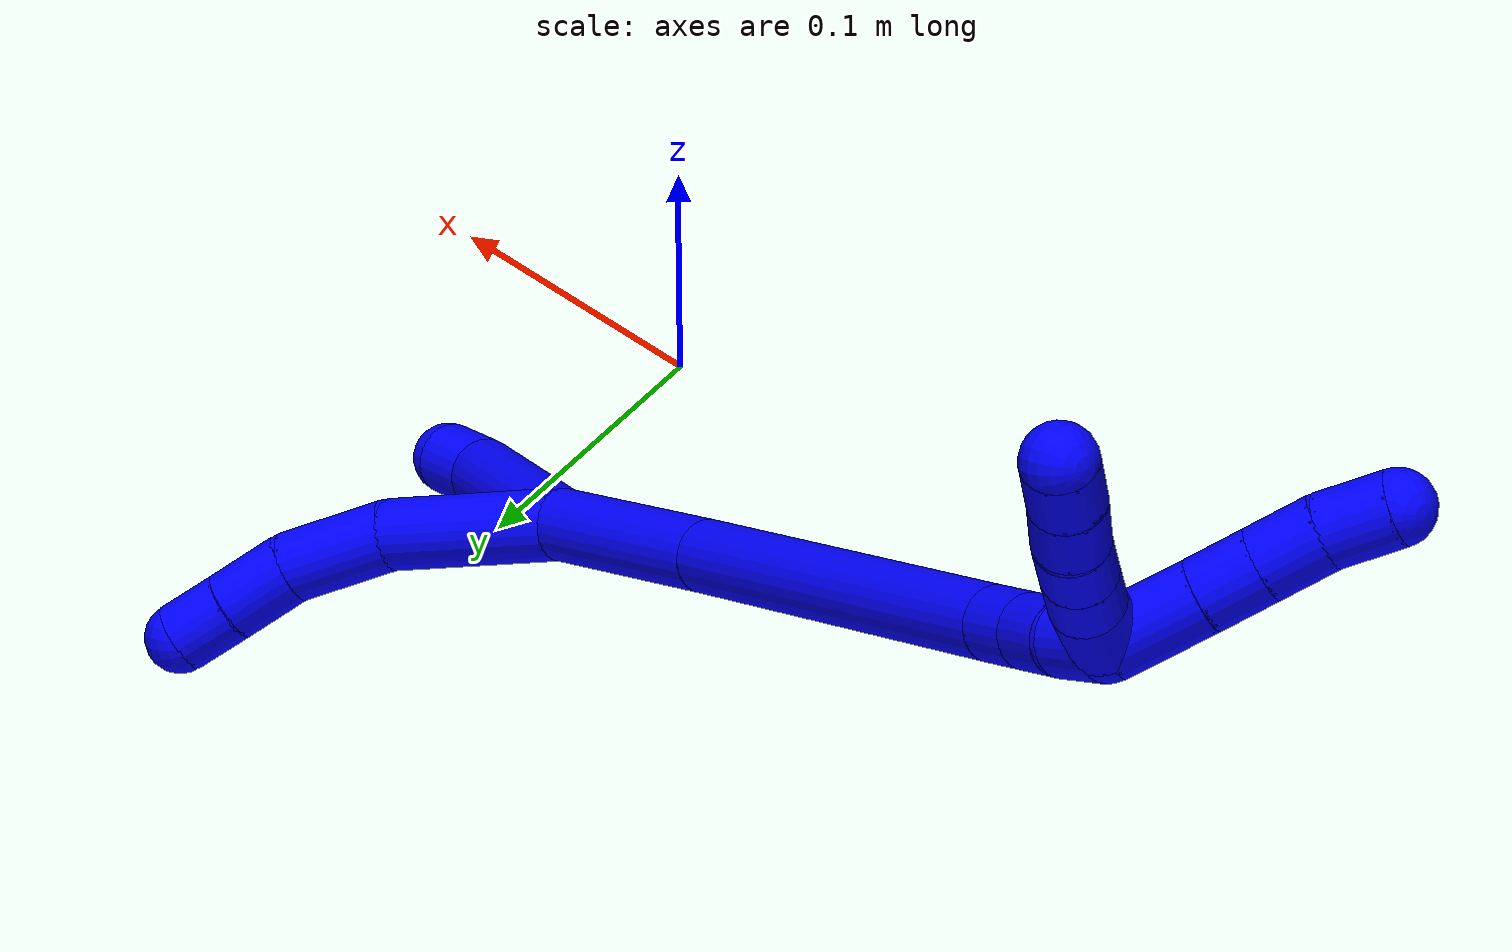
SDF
<sdf version="1.7">
 <world name="default">
  <model name="1">
   <static>0</static>
   <link name="1">
    <collision name="collision-cylinder-e_1_2_8">
     <pose>0.011967 -0.011154 -0.028101 2.76375 0.3769 1.56823</pose>
     <geometry><cylinder><radius>0.0125</radius><length>0.065031</length></cylinder></geometry>
     <surface>
      <friction><ode><mu>1.16</mu><mu2>1.16</mu2><slip1>0</slip1><slip2>0</slip2></ode></friction>
      <contact><ode><kp>1e+06</kp><kd>1</kd><max_vel>0</max_vel><min_depth>0.001</min_depth></ode></contact>
     </surface>
    </collision>
    <visual name="visual-cylinder-e_1_2_8">
     <pose>0.011967 -0.011154 -0.028101 2.76375 0.3769 1.56823</pose>
     <geometry><cylinder><radius>0.0125</radius><length>0.065031</length></cylinder></geometry>
     <material><ambient>0 0 1 1</ambient></material>
    </visual>
    <collision name="collision-cylinder-e_2_8_9">
     <pose>0.035371 -0.02896 -0.070115 2.69561 0.638098 1.93843</pose>
     <geometry><cylinder><radius>0.0125</radius><length>0.038401</length></cylinder></geometry>
     <surface>
      <friction><ode><mu>1.16</mu><mu2>1.16</mu2><slip1>0</slip1><slip2>0</slip2></ode></friction>
      <contact><ode><kp>1e+06</kp><kd>1</kd><max_vel>0</max_vel><min_depth>0.001</min_depth></ode></contact>
     </surface>
    </collision>
    <visual name="visual-cylinder-e_2_8_9">
     <pose>0.035371 -0.02896 -0.070115 2.69561 0.638098 1.93843</pose>
     <geometry><cylinder><radius>0.0125</radius><length>0.038401</length></cylinder></geometry>
     <material><ambient>0 0 1 1</ambient></material>
    </visual>
    <collision name="collision-cylinder-e_3_9_10">
     <pose>0.056917 -0.039436 -0.090852 2.63074 0.91227 2.16342</pose>
     <geometry><cylinder><radius>0.0125</radius><length>0.025563</length></cylinder></geometry>
     <surface>
      <friction><ode><mu>1.16</mu><mu2>1.16</mu2><slip1>0</slip1><slip2>0</slip2></ode></friction>
      <contact><ode><kp>1e+06</kp><kd>1</kd><max_vel>0</max_vel><min_depth>0.001</min_depth></ode></contact>
     </surface>
    </collision>
    <visual name="visual-cylinder-e_3_9_10">
     <pose>0.056917 -0.039436 -0.090852 2.63074 0.91227 2.16342</pose>
     <geometry><cylinder><radius>0.0125</radius><length>0.025563</length></cylinder></geometry>
     <material><ambient>0 0 1 1</ambient></material>
    </visual>
    <collision name="collision-cylinder-e_4_10_6">
     <pose>0.075191 -0.046229 -0.103576 2.67551 0.890599 2.21859</pose>
     <geometry><cylinder><radius>0.0125</radius><length>0.021006</length></cylinder></geometry>
     <surface>
      <friction><ode><mu>1.16</mu><mu2>1.16</mu2><slip1>0</slip1><slip2>0</slip2></ode></friction>
      <contact><ode><kp>1e+06</kp><kd>1</kd><max_vel>0</max_vel><min_depth>0.001</min_depth></ode></contact>
     </surface>
    </collision>
    <visual name="visual-cylinder-e_4_10_6">
     <pose>0.075191 -0.046229 -0.103576 2.67551 0.890599 2.21859</pose>
     <geometry><cylinder><radius>0.0125</radius><length>0.021006</length></cylinder></geometry>
     <material><ambient>0 0 1 1</ambient></material>
    </visual>
    <collision name="collision-cylinder-e_1_2_11">
     <pose>-0.004674 0.010589 -0.037719 -2.86789 -0.118735 0.814916</pose>
     <geometry><cylinder><radius>0.0125</radius><length>0.078911</length></cylinder></geometry>
     <surface>
      <friction><ode><mu>1.16</mu><mu2>1.16</mu2><slip1>0</slip1><slip2>0</slip2></ode></friction>
      <contact><ode><kp>1e+06</kp><kd>1</kd><max_vel>0</max_vel><min_depth>0.001</min_depth></ode></contact>
     </surface>
    </collision>
    <visual name="visual-cylinder-e_1_2_11">
     <pose>-0.004674 0.010589 -0.037719 -2.86789 -0.118735 0.814916</pose>
     <geometry><cylinder><radius>0.0125</radius><length>0.078911</length></cylinder></geometry>
     <material><ambient>0 0 1 1</ambient></material>
    </visual>
    <collision name="collision-cylinder-e_2_11_5">
     <pose>-0.009932 0.021087 -0.085967 3.13286 -0.055475 -2.82924</pose>
     <geometry><cylinder><radius>0.0125</radius><length>0.021089</length></cylinder></geometry>
     <surface>
      <friction><ode><mu>1.16</mu><mu2>1.16</mu2><slip1>0</slip1><slip2>0</slip2></ode></friction>
      <contact><ode><kp>1e+06</kp><kd>1</kd><max_vel>0</max_vel><min_depth>0.001</min_depth></ode></contact>
     </surface>
    </collision>
    <visual name="visual-cylinder-e_2_11_5">
     <pose>-0.009932 0.021087 -0.085967 3.13286 -0.055475 -2.82924</pose>
     <geometry><cylinder><radius>0.0125</radius><length>0.021089</length></cylinder></geometry>
     <material><ambient>0 0 1 1</ambient></material>
    </visual>
    <collision name="collision-cylinder-e_1_2_12">
     <pose>-0.002857 -0.000427 0.039025 0.010941 -0.073074 -0.0004</pose>
     <geometry><cylinder><radius>0.0125</radius><length>0.078264</length></cylinder></geometry>
     <surface>
      <friction><ode><mu>1.16</mu><mu2>1.16</mu2><slip1>0</slip1><slip2>0</slip2></ode></friction>
      <contact><ode><kp>1e+06</kp><kd>1</kd><max_vel>0</max_vel><min_depth>0.001</min_depth></ode></contact>
     </surface>
    </collision>
    <visual name="visual-cylinder-e_1_2_12">
     <pose>-0.002857 -0.000427 0.039025 0.010941 -0.073074 -0.0004</pose>
     <geometry><cylinder><radius>0.0125</radius><length>0.078264</length></cylinder></geometry>
     <material><ambient>0 0 1 1</ambient></material>
    </visual>
    <collision name="collision-cylinder-e_2_12_13">
     <pose>-0.00979 -0.008701 0.157763 0.098122 -0.05085 -0.002497</pose>
     <geometry><cylinder><radius>0.0125</radius><length>0.160403</length></cylinder></geometry>
     <surface>
      <friction><ode><mu>1.16</mu><mu2>1.16</mu2><slip1>0</slip1><slip2>0</slip2></ode></friction>
      <contact><ode><kp>1e+06</kp><kd>1</kd><max_vel>0</max_vel><min_depth>0.001</min_depth></ode></contact>
     </surface>
    </collision>
    <visual name="visual-cylinder-e_2_12_13">
     <pose>-0.00979 -0.008701 0.157763 0.098122 -0.05085 -0.002497</pose>
     <geometry><cylinder><radius>0.0125</radius><length>0.160403</length></cylinder></geometry>
     <material><ambient>0 0 1 1</ambient></material>
    </visual>
    <collision name="collision-cylinder-e_3_13_14">
     <pose>-0.014378 -0.018026 0.247354 0.14858 -0.051104 -0.003804</pose>
     <geometry><cylinder><radius>0.0125</radius><length>0.020004</length></cylinder></geometry>
     <surface>
      <friction><ode><mu>1.16</mu><mu2>1.16</mu2><slip1>0</slip1><slip2>0</slip2></ode></friction>
      <contact><ode><kp>1e+06</kp><kd>1</kd><max_vel>0</max_vel><min_depth>0.001</min_depth></ode></contact>
     </surface>
    </collision>
    <visual name="visual-cylinder-e_3_13_14">
     <pose>-0.014378 -0.018026 0.247354 0.14858 -0.051104 -0.003804</pose>
     <geometry><cylinder><radius>0.0125</radius><length>0.020004</length></cylinder></geometry>
     <material><ambient>0 0 1 1</ambient></material>
    </visual>
    <collision name="collision-cylinder-e_4_14_15">
     <pose>-0.015301 -0.021963 0.26745 0.236134 -0.039241 -0.004655</pose>
     <geometry><cylinder><radius>0.0125</radius><length>0.021035</length></cylinder></geometry>
     <surface>
      <friction><ode><mu>1.16</mu><mu2>1.16</mu2><slip1>0</slip1><slip2>0</slip2></ode></friction>
      <contact><ode><kp>1e+06</kp><kd>1</kd><max_vel>0</max_vel><min_depth>0.001</min_depth></ode></contact>
     </surface>
    </collision>
    <visual name="visual-cylinder-e_4_14_15">
     <pose>-0.015301 -0.021963 0.26745 0.236134 -0.039241 -0.004655</pose>
     <geometry><cylinder><radius>0.0125</radius><length>0.021035</length></cylinder></geometry>
     <material><ambient>0 0 1 1</ambient></material>
    </visual>
    <collision name="collision-cylinder-e_5_15_1">
     <pose>-0.017089 -0.024955 0.287708 0.053045 -0.135957 -0.003612</pose>
     <geometry><cylinder><radius>0.0125</radius><length>0.020295</length></cylinder></geometry>
     <surface>
      <friction><ode><mu>1.16</mu><mu2>1.16</mu2><slip1>0</slip1><slip2>0</slip2></ode></friction>
      <contact><ode><kp>1e+06</kp><kd>1</kd><max_vel>0</max_vel><min_depth>0.001</min_depth></ode></contact>
     </surface>
    </collision>
    <visual name="visual-cylinder-e_5_15_1">
     <pose>-0.017089 -0.024955 0.287708 0.053045 -0.135957 -0.003612</pose>
     <geometry><cylinder><radius>0.0125</radius><length>0.020295</length></cylinder></geometry>
     <material><ambient>0 0 1 1</ambient></material>
    </visual>
    <collision name="collision-cylinder-e_1_1_16">
     <pose>-0.0304 -0.020469 0.308024 -0.45436 -0.806691 0.196664</pose>
     <geometry><cylinder><radius>0.0125</radius><length>0.03306</length></cylinder></geometry>
     <surface>
      <friction><ode><mu>1.16</mu><mu2>1.16</mu2><slip1>0</slip1><slip2>0</slip2></ode></friction>
      <contact><ode><kp>1e+06</kp><kd>1</kd><max_vel>0</max_vel><min_depth>0.001</min_depth></ode></contact>
     </surface>
    </collision>
    <visual name="visual-cylinder-e_1_1_16">
     <pose>-0.0304 -0.020469 0.308024 -0.45436 -0.806691 0.196664</pose>
     <geometry><cylinder><radius>0.0125</radius><length>0.03306</length></cylinder></geometry>
     <material><ambient>0 0 1 1</ambient></material>
    </visual>
    <collision name="collision-cylinder-e_2_16_17">
     <pose>-0.049939 -0.012236 0.324605 -0.471346 -0.82138 0.208377</pose>
     <geometry><cylinder><radius>0.0125</radius><length>0.020775</length></cylinder></geometry>
     <surface>
      <friction><ode><mu>1.16</mu><mu2>1.16</mu2><slip1>0</slip1><slip2>0</slip2></ode></friction>
      <contact><ode><kp>1e+06</kp><kd>1</kd><max_vel>0</max_vel><min_depth>0.001</min_depth></ode></contact>
     </surface>
    </collision>
    <visual name="visual-cylinder-e_2_16_17">
     <pose>-0.049939 -0.012236 0.324605 -0.471346 -0.82138 0.208377</pose>
     <geometry><cylinder><radius>0.0125</radius><length>0.020775</length></cylinder></geometry>
     <material><ambient>0 0 1 1</ambient></material>
    </visual>
    <collision name="collision-cylinder-e_3_17_18">
     <pose>-0.06566 -0.005712 0.337768 -0.449749 -0.817241 0.197444</pose>
     <geometry><cylinder><radius>0.0125</radius><length>0.022258</length></cylinder></geometry>
     <surface>
      <friction><ode><mu>1.16</mu><mu2>1.16</mu2><slip1>0</slip1><slip2>0</slip2></ode></friction>
      <contact><ode><kp>1e+06</kp><kd>1</kd><max_vel>0</max_vel><min_depth>0.001</min_depth></ode></contact>
     </surface>
    </collision>
    <visual name="visual-cylinder-e_3_17_18">
     <pose>-0.06566 -0.005712 0.337768 -0.449749 -0.817241 0.197444</pose>
     <geometry><cylinder><radius>0.0125</radius><length>0.022258</length></cylinder></geometry>
     <material><ambient>0 0 1 1</ambient></material>
    </visual>
    <collision name="collision-cylinder-e_4_18_4">
     <pose>-0.080913 0.001386 0.353434 -0.406018 -0.639851 0.136185</pose>
     <geometry><cylinder><radius>0.0125</radius><length>0.023906</length></cylinder></geometry>
     <surface>
      <friction><ode><mu>1.16</mu><mu2>1.16</mu2><slip1>0</slip1><slip2>0</slip2></ode></friction>
      <contact><ode><kp>1e+06</kp><kd>1</kd><max_vel>0</max_vel><min_depth>0.001</min_depth></ode></contact>
     </surface>
    </collision>
    <visual name="visual-cylinder-e_4_18_4">
     <pose>-0.080913 0.001386 0.353434 -0.406018 -0.639851 0.136185</pose>
     <geometry><cylinder><radius>0.0125</radius><length>0.023906</length></cylinder></geometry>
     <material><ambient>0 0 1 1</ambient></material>
    </visual>
    <collision name="collision-cylinder-e_1_1_19">
     <pose>-0.022521 -0.03439 0.299822 1.34187 -0.417623 -0.333284</pose>
     <geometry><cylinder><radius>0.0125</radius><length>0.02</length></cylinder></geometry>
     <surface>
      <friction><ode><mu>1.16</mu><mu2>1.16</mu2><slip1>0</slip1><slip2>0</slip2></ode></friction>
      <contact><ode><kp>1e+06</kp><kd>1</kd><max_vel>0</max_vel><min_depth>0.001</min_depth></ode></contact>
     </surface>
    </collision>
    <visual name="visual-cylinder-e_1_1_19">
     <pose>-0.022521 -0.03439 0.299822 1.34187 -0.417623 -0.333284</pose>
     <geometry><cylinder><radius>0.0125</radius><length>0.02</length></cylinder></geometry>
     <material><ambient>0 0 1 1</ambient></material>
    </visual>
    <collision name="collision-cylinder-e_2_19_20">
     <pose>-0.030026 -0.051584 0.306295 1.08299 -0.352191 -0.213235</pose>
     <geometry><cylinder><radius>0.0125</radius><length>0.02</length></cylinder></geometry>
     <surface>
      <friction><ode><mu>1.16</mu><mu2>1.16</mu2><slip1>0</slip1><slip2>0</slip2></ode></friction>
      <contact><ode><kp>1e+06</kp><kd>1</kd><max_vel>0</max_vel><min_depth>0.001</min_depth></ode></contact>
     </surface>
    </collision>
    <visual name="visual-cylinder-e_2_19_20">
     <pose>-0.030026 -0.051584 0.306295 1.08299 -0.352191 -0.213235</pose>
     <geometry><cylinder><radius>0.0125</radius><length>0.02</length></cylinder></geometry>
     <material><ambient>0 0 1 1</ambient></material>
    </visual>
    <collision name="collision-cylinder-e_3_20_21">
     <pose>-0.036901 -0.068096 0.315242 1.06553 -0.349591 -0.20751</pose>
     <geometry><cylinder><radius>0.0125</radius><length>0.02</length></cylinder></geometry>
     <surface>
      <friction><ode><mu>1.16</mu><mu2>1.16</mu2><slip1>0</slip1><slip2>0</slip2></ode></friction>
      <contact><ode><kp>1e+06</kp><kd>1</kd><max_vel>0</max_vel><min_depth>0.001</min_depth></ode></contact>
     </surface>
    </collision>
    <visual name="visual-cylinder-e_3_20_21">
     <pose>-0.036901 -0.068096 0.315242 1.06553 -0.349591 -0.20751</pose>
     <geometry><cylinder><radius>0.0125</radius><length>0.02</length></cylinder></geometry>
     <material><ambient>0 0 1 1</ambient></material>
    </visual>
    <collision name="collision-cylinder-e_4_21_22">
     <pose>-0.045043 -0.084022 0.324078 1.06292 -0.491248 -0.292639</pose>
     <geometry><cylinder><radius>0.0125</radius><length>0.02</length></cylinder></geometry>
     <surface>
      <friction><ode><mu>1.16</mu><mu2>1.16</mu2><slip1>0</slip1><slip2>0</slip2></ode></friction>
      <contact><ode><kp>1e+06</kp><kd>1</kd><max_vel>0</max_vel><min_depth>0.001</min_depth></ode></contact>
     </surface>
    </collision>
    <visual name="visual-cylinder-e_4_21_22">
     <pose>-0.045043 -0.084022 0.324078 1.06292 -0.491248 -0.292639</pose>
     <geometry><cylinder><radius>0.0125</radius><length>0.02</length></cylinder></geometry>
     <material><ambient>0 0 1 1</ambient></material>
    </visual>
    <collision name="collision-cylinder-e_5_22_3">
     <pose>-0.054353 -0.099776 0.332123 1.13407 -0.477188 -0.307327</pose>
     <geometry><cylinder><radius>0.0125</radius><length>0.02</length></cylinder></geometry>
     <surface>
      <friction><ode><mu>1.16</mu><mu2>1.16</mu2><slip1>0</slip1><slip2>0</slip2></ode></friction>
      <contact><ode><kp>1e+06</kp><kd>1</kd><max_vel>0</max_vel><min_depth>0.001</min_depth></ode></contact>
     </surface>
    </collision>
    <visual name="visual-cylinder-e_5_22_3">
     <pose>-0.054353 -0.099776 0.332123 1.13407 -0.477188 -0.307327</pose>
     <geometry><cylinder><radius>0.0125</radius><length>0.02</length></cylinder></geometry>
     <material><ambient>0 0 1 1</ambient></material>
    </visual>
    <collision name="collision-sphere-3">
     <pose>-0.058946 -0.107825 0.33588 0 -0 0</pose>
     <geometry><sphere><radius>0.0125</radius></sphere></geometry>
     <surface>
      <friction><ode><mu>1.16</mu><mu2>1.16</mu2><slip1>0</slip1><slip2>0</slip2></ode></friction>
      <contact><ode><kp>1e+06</kp><kd>1</kd><max_vel>0</max_vel><min_depth>0.001</min_depth></ode></contact>
     </surface>
    </collision>
    <visual name="visual-sphere-3">
     <pose>-0.058946 -0.107825 0.33588 0 -0 0</pose>
     <geometry><sphere><radius>0.0125</radius></sphere></geometry>
     <material><ambient>0 0 1 1</ambient></material>
    </visual>
    <collision name="collision-sphere-22">
     <pose>-0.04976 -0.091726 0.328366 0 -0 0</pose>
     <geometry><sphere><radius>0.0125</radius></sphere></geometry>
     <surface>
      <friction><ode><mu>1.16</mu><mu2>1.16</mu2><slip1>0</slip1><slip2>0</slip2></ode></friction>
      <contact><ode><kp>1e+06</kp><kd>1</kd><max_vel>0</max_vel><min_depth>0.001</min_depth></ode></contact>
     </surface>
    </collision>
    <visual name="visual-sphere-22">
     <pose>-0.04976 -0.091726 0.328366 0 -0 0</pose>
     <geometry><sphere><radius>0.0125</radius></sphere></geometry>
     <material><ambient>0 0 1 1</ambient></material>
    </visual>
    <collision name="collision-sphere-21">
     <pose>-0.040326 -0.076317 0.31979 0 -0 0</pose>
     <geometry><sphere><radius>0.0125</radius></sphere></geometry>
     <surface>
      <friction><ode><mu>1.16</mu><mu2>1.16</mu2><slip1>0</slip1><slip2>0</slip2></ode></friction>
      <contact><ode><kp>1e+06</kp><kd>1</kd><max_vel>0</max_vel><min_depth>0.001</min_depth></ode></contact>
     </surface>
    </collision>
    <visual name="visual-sphere-21">
     <pose>-0.040326 -0.076317 0.31979 0 -0 0</pose>
     <geometry><sphere><radius>0.0125</radius></sphere></geometry>
     <material><ambient>0 0 1 1</ambient></material>
    </visual>
    <collision name="collision-sphere-20">
     <pose>-0.033476 -0.059875 0.310694 0 -0 0</pose>
     <geometry><sphere><radius>0.0125</radius></sphere></geometry>
     <surface>
      <friction><ode><mu>1.16</mu><mu2>1.16</mu2><slip1>0</slip1><slip2>0</slip2></ode></friction>
      <contact><ode><kp>1e+06</kp><kd>1</kd><max_vel>0</max_vel><min_depth>0.001</min_depth></ode></contact>
     </surface>
    </collision>
    <visual name="visual-sphere-20">
     <pose>-0.033476 -0.059875 0.310694 0 -0 0</pose>
     <geometry><sphere><radius>0.0125</radius></sphere></geometry>
     <material><ambient>0 0 1 1</ambient></material>
    </visual>
    <collision name="collision-sphere-19">
     <pose>-0.026576 -0.043292 0.301896 0 -0 0</pose>
     <geometry><sphere><radius>0.0125</radius></sphere></geometry>
     <surface>
      <friction><ode><mu>1.16</mu><mu2>1.16</mu2><slip1>0</slip1><slip2>0</slip2></ode></friction>
      <contact><ode><kp>1e+06</kp><kd>1</kd><max_vel>0</max_vel><min_depth>0.001</min_depth></ode></contact>
     </surface>
    </collision>
    <visual name="visual-sphere-19">
     <pose>-0.026576 -0.043292 0.301896 0 -0 0</pose>
     <geometry><sphere><radius>0.0125</radius></sphere></geometry>
     <material><ambient>0 0 1 1</ambient></material>
    </visual>
    <collision name="collision-sphere-11">
     <pose>-0.009347 0.021179 -0.075439 0 -0 0</pose>
     <geometry><sphere><radius>0.0125</radius></sphere></geometry>
     <surface>
      <friction><ode><mu>1.16</mu><mu2>1.16</mu2><slip1>0</slip1><slip2>0</slip2></ode></friction>
      <contact><ode><kp>1e+06</kp><kd>1</kd><max_vel>0</max_vel><min_depth>0.001</min_depth></ode></contact>
     </surface>
    </collision>
    <visual name="visual-sphere-11">
     <pose>-0.009347 0.021179 -0.075439 0 -0 0</pose>
     <geometry><sphere><radius>0.0125</radius></sphere></geometry>
     <material><ambient>0 0 1 1</ambient></material>
    </visual>
    <collision name="collision-sphere-6">
     <pose>0.083356 -0.049197 -0.109477 0 -0 0</pose>
     <geometry><sphere><radius>0.0125</radius></sphere></geometry>
     <surface>
      <friction><ode><mu>1.16</mu><mu2>1.16</mu2><slip1>0</slip1><slip2>0</slip2></ode></friction>
      <contact><ode><kp>1e+06</kp><kd>1</kd><max_vel>0</max_vel><min_depth>0.001</min_depth></ode></contact>
     </surface>
    </collision>
    <visual name="visual-sphere-6">
     <pose>0.083356 -0.049197 -0.109477 0 -0 0</pose>
     <geometry><sphere><radius>0.0125</radius></sphere></geometry>
     <material><ambient>0 0 1 1</ambient></material>
    </visual>
    <collision name="collision-sphere-10">
     <pose>0.067025 -0.04326 -0.097675 0 -0 0</pose>
     <geometry><sphere><radius>0.0125</radius></sphere></geometry>
     <surface>
      <friction><ode><mu>1.16</mu><mu2>1.16</mu2><slip1>0</slip1><slip2>0</slip2></ode></friction>
      <contact><ode><kp>1e+06</kp><kd>1</kd><max_vel>0</max_vel><min_depth>0.001</min_depth></ode></contact>
     </surface>
    </collision>
    <visual name="visual-sphere-10">
     <pose>0.067025 -0.04326 -0.097675 0 -0 0</pose>
     <geometry><sphere><radius>0.0125</radius></sphere></geometry>
     <material><ambient>0 0 1 1</ambient></material>
    </visual>
    <collision name="collision-sphere-9">
     <pose>0.046808 -0.035612 -0.084029 0 -0 0</pose>
     <geometry><sphere><radius>0.0125</radius></sphere></geometry>
     <surface>
      <friction><ode><mu>1.16</mu><mu2>1.16</mu2><slip1>0</slip1><slip2>0</slip2></ode></friction>
      <contact><ode><kp>1e+06</kp><kd>1</kd><max_vel>0</max_vel><min_depth>0.001</min_depth></ode></contact>
     </surface>
    </collision>
    <visual name="visual-sphere-9">
     <pose>0.046808 -0.035612 -0.084029 0 -0 0</pose>
     <geometry><sphere><radius>0.0125</radius></sphere></geometry>
     <material><ambient>0 0 1 1</ambient></material>
    </visual>
    <collision name="collision-sphere-2">
     <geometry><sphere><radius>0.0125</radius></sphere></geometry>
     <surface>
      <friction><ode><mu>1.16</mu><mu2>1.16</mu2><slip1>0</slip1><slip2>0</slip2></ode></friction>
      <contact><ode><kp>1e+06</kp><kd>1</kd><max_vel>0</max_vel><min_depth>0.001</min_depth></ode></contact>
     </surface>
    </collision>
    <visual name="visual-sphere-2">
     <geometry><sphere><radius>0.0125</radius></sphere></geometry>
     <material><ambient>0 0 1 1</ambient></material>
    </visual>
    <collision name="collision-sphere-8">
     <pose>0.023934 -0.022307 -0.056201 0 -0 0</pose>
     <geometry><sphere><radius>0.0125</radius></sphere></geometry>
     <surface>
      <friction><ode><mu>1.16</mu><mu2>1.16</mu2><slip1>0</slip1><slip2>0</slip2></ode></friction>
      <contact><ode><kp>1e+06</kp><kd>1</kd><max_vel>0</max_vel><min_depth>0.001</min_depth></ode></contact>
     </surface>
    </collision>
    <visual name="visual-sphere-8">
     <pose>0.023934 -0.022307 -0.056201 0 -0 0</pose>
     <geometry><sphere><radius>0.0125</radius></sphere></geometry>
     <material><ambient>0 0 1 1</ambient></material>
    </visual>
    <collision name="collision-sphere-5">
     <pose>-0.010517 0.020995 -0.096495 0 -0 0</pose>
     <geometry><sphere><radius>0.0125</radius></sphere></geometry>
     <surface>
      <friction><ode><mu>1.16</mu><mu2>1.16</mu2><slip1>0</slip1><slip2>0</slip2></ode></friction>
      <contact><ode><kp>1e+06</kp><kd>1</kd><max_vel>0</max_vel><min_depth>0.001</min_depth></ode></contact>
     </surface>
    </collision>
    <visual name="visual-sphere-5">
     <pose>-0.010517 0.020995 -0.096495 0 -0 0</pose>
     <geometry><sphere><radius>0.0125</radius></sphere></geometry>
     <material><ambient>0 0 1 1</ambient></material>
    </visual>
    <collision name="collision-sphere-12">
     <pose>-0.005714 -0.000854 0.07805 0 -0 0</pose>
     <geometry><sphere><radius>0.0125</radius></sphere></geometry>
     <surface>
      <friction><ode><mu>1.16</mu><mu2>1.16</mu2><slip1>0</slip1><slip2>0</slip2></ode></friction>
      <contact><ode><kp>1e+06</kp><kd>1</kd><max_vel>0</max_vel><min_depth>0.001</min_depth></ode></contact>
     </surface>
    </collision>
    <visual name="visual-sphere-12">
     <pose>-0.005714 -0.000854 0.07805 0 -0 0</pose>
     <geometry><sphere><radius>0.0125</radius></sphere></geometry>
     <material><ambient>0 0 1 1</ambient></material>
    </visual>
    <collision name="collision-sphere-13">
     <pose>-0.013867 -0.016547 0.237475 0 -0 0</pose>
     <geometry><sphere><radius>0.0125</radius></sphere></geometry>
     <surface>
      <friction><ode><mu>1.16</mu><mu2>1.16</mu2><slip1>0</slip1><slip2>0</slip2></ode></friction>
      <contact><ode><kp>1e+06</kp><kd>1</kd><max_vel>0</max_vel><min_depth>0.001</min_depth></ode></contact>
     </surface>
    </collision>
    <visual name="visual-sphere-13">
     <pose>-0.013867 -0.016547 0.237475 0 -0 0</pose>
     <geometry><sphere><radius>0.0125</radius></sphere></geometry>
     <material><ambient>0 0 1 1</ambient></material>
    </visual>
    <collision name="collision-sphere-14">
     <pose>-0.014889 -0.019505 0.257233 0 -0 0</pose>
     <geometry><sphere><radius>0.0125</radius></sphere></geometry>
     <surface>
      <friction><ode><mu>1.16</mu><mu2>1.16</mu2><slip1>0</slip1><slip2>0</slip2></ode></friction>
      <contact><ode><kp>1e+06</kp><kd>1</kd><max_vel>0</max_vel><min_depth>0.001</min_depth></ode></contact>
     </surface>
    </collision>
    <visual name="visual-sphere-14">
     <pose>-0.014889 -0.019505 0.257233 0 -0 0</pose>
     <geometry><sphere><radius>0.0125</radius></sphere></geometry>
     <material><ambient>0 0 1 1</ambient></material>
    </visual>
    <collision name="collision-sphere-15">
     <pose>-0.015714 -0.024422 0.277668 0 -0 0</pose>
     <geometry><sphere><radius>0.0125</radius></sphere></geometry>
     <surface>
      <friction><ode><mu>1.16</mu><mu2>1.16</mu2><slip1>0</slip1><slip2>0</slip2></ode></friction>
      <contact><ode><kp>1e+06</kp><kd>1</kd><max_vel>0</max_vel><min_depth>0.001</min_depth></ode></contact>
     </surface>
    </collision>
    <visual name="visual-sphere-15">
     <pose>-0.015714 -0.024422 0.277668 0 -0 0</pose>
     <geometry><sphere><radius>0.0125</radius></sphere></geometry>
     <material><ambient>0 0 1 1</ambient></material>
    </visual>
    <collision name="collision-sphere-1">
     <pose>-0.018465 -0.025488 0.297747 0 -0 0</pose>
     <geometry><sphere><radius>0.0125</radius></sphere></geometry>
     <surface>
      <friction><ode><mu>1.16</mu><mu2>1.16</mu2><slip1>0</slip1><slip2>0</slip2></ode></friction>
      <contact><ode><kp>1e+06</kp><kd>1</kd><max_vel>0</max_vel><min_depth>0.001</min_depth></ode></contact>
     </surface>
    </collision>
    <visual name="visual-sphere-1">
     <pose>-0.018465 -0.025488 0.297747 0 -0 0</pose>
     <geometry><sphere><radius>0.0125</radius></sphere></geometry>
     <material><ambient>0 0 1 1</ambient></material>
    </visual>
    <collision name="collision-sphere-18">
     <pose>-0.073776 -0.002401 0.344625 0 -0 0</pose>
     <geometry><sphere><radius>0.0125</radius></sphere></geometry>
     <surface>
      <friction><ode><mu>1.16</mu><mu2>1.16</mu2><slip1>0</slip1><slip2>0</slip2></ode></friction>
      <contact><ode><kp>1e+06</kp><kd>1</kd><max_vel>0</max_vel><min_depth>0.001</min_depth></ode></contact>
     </surface>
    </collision>
    <visual name="visual-sphere-18">
     <pose>-0.073776 -0.002401 0.344625 0 -0 0</pose>
     <geometry><sphere><radius>0.0125</radius></sphere></geometry>
     <material><ambient>0 0 1 1</ambient></material>
    </visual>
    <collision name="collision-sphere-16">
     <pose>-0.042334 -0.015449 0.318301 0 -0 0</pose>
     <geometry><sphere><radius>0.0125</radius></sphere></geometry>
     <surface>
      <friction><ode><mu>1.16</mu><mu2>1.16</mu2><slip1>0</slip1><slip2>0</slip2></ode></friction>
      <contact><ode><kp>1e+06</kp><kd>1</kd><max_vel>0</max_vel><min_depth>0.001</min_depth></ode></contact>
     </surface>
    </collision>
    <visual name="visual-sphere-16">
     <pose>-0.042334 -0.015449 0.318301 0 -0 0</pose>
     <geometry><sphere><radius>0.0125</radius></sphere></geometry>
     <material><ambient>0 0 1 1</ambient></material>
    </visual>
    <collision name="collision-sphere-17">
     <pose>-0.057544 -0.009023 0.33091 0 -0 0</pose>
     <geometry><sphere><radius>0.0125</radius></sphere></geometry>
     <surface>
      <friction><ode><mu>1.16</mu><mu2>1.16</mu2><slip1>0</slip1><slip2>0</slip2></ode></friction>
      <contact><ode><kp>1e+06</kp><kd>1</kd><max_vel>0</max_vel><min_depth>0.001</min_depth></ode></contact>
     </surface>
    </collision>
    <visual name="visual-sphere-17">
     <pose>-0.057544 -0.009023 0.33091 0 -0 0</pose>
     <geometry><sphere><radius>0.0125</radius></sphere></geometry>
     <material><ambient>0 0 1 1</ambient></material>
    </visual>
    <collision name="collision-sphere-4">
     <pose>-0.088049 0.005173 0.362243 0 -0 0</pose>
     <geometry><sphere><radius>0.0125</radius></sphere></geometry>
     <surface>
      <friction><ode><mu>1.16</mu><mu2>1.16</mu2><slip1>0</slip1><slip2>0</slip2></ode></friction>
      <contact><ode><kp>1e+06</kp><kd>1</kd><max_vel>0</max_vel><min_depth>0.001</min_depth></ode></contact>
     </surface>
    </collision>
    <visual name="visual-sphere-4">
     <pose>-0.088049 0.005173 0.362243 0 -0 0</pose>
     <geometry><sphere><radius>0.0125</radius></sphere></geometry>
     <material><ambient>0 0 1 1</ambient></material>
    </visual>
    <inertial>
     <pose>-0.00983 -0.017435 0.127215 0 -0 0</pose>
     <mass>0.75</mass>
     <inertia>
      <ixx>0.000492</ixx>
      <ixy>0</ixy>
      <ixz>0</ixz>
      <iyy>0.000444</iyy>
      <iyz>0</iyz>
      <izz>7.4e-05</izz>
     </inertia>
    </inertial>
   </link>
   <pose>-0.057133 0.130816 0.072401 -1.01108 0.604361 1.79622</pose>
  </model>
 </world>
</sdf>
